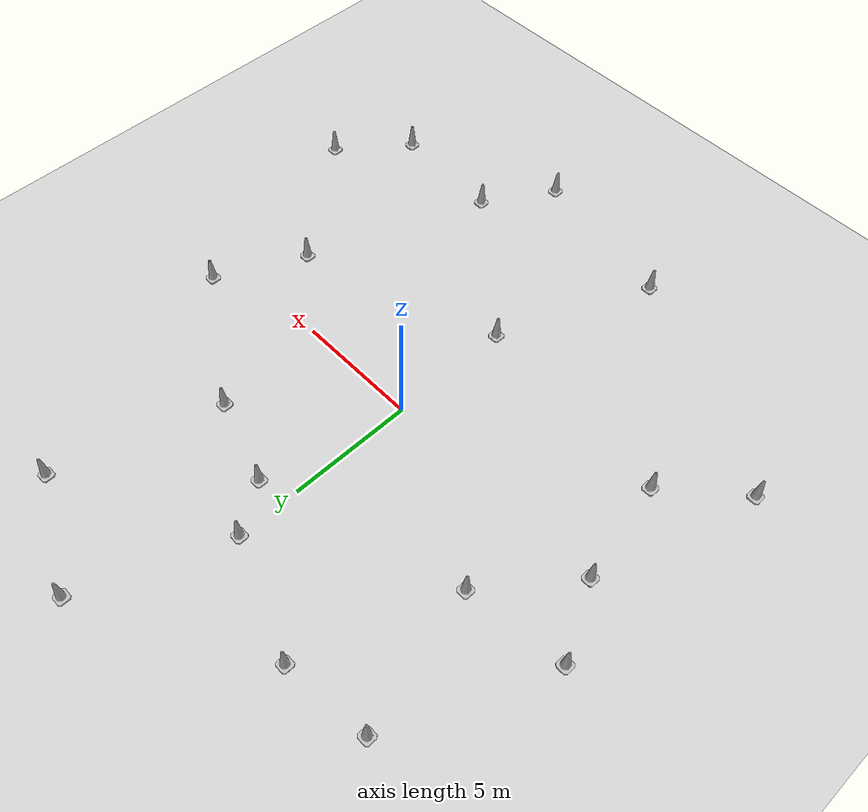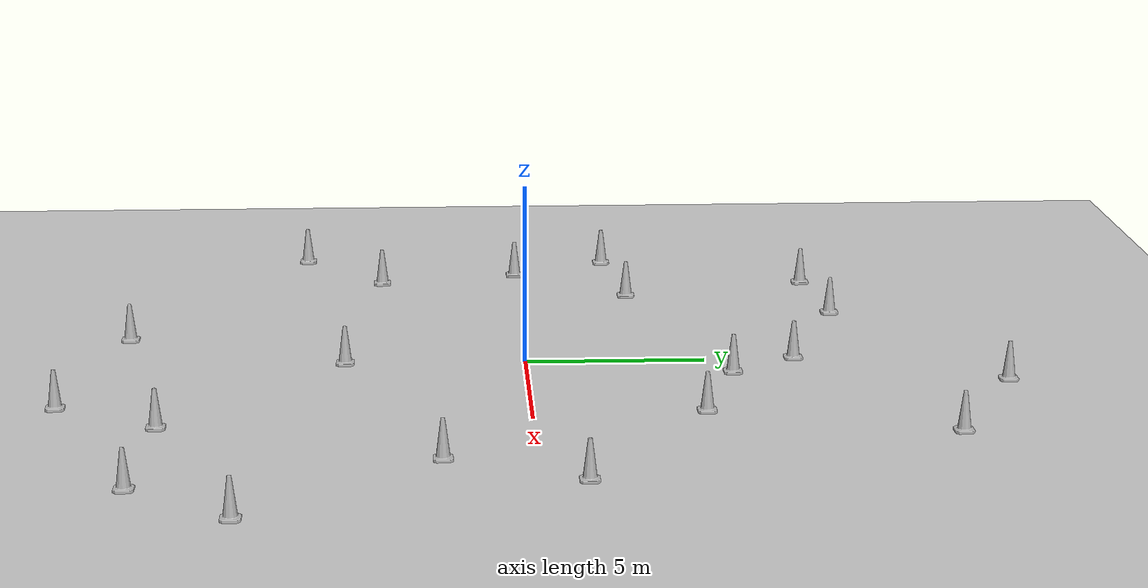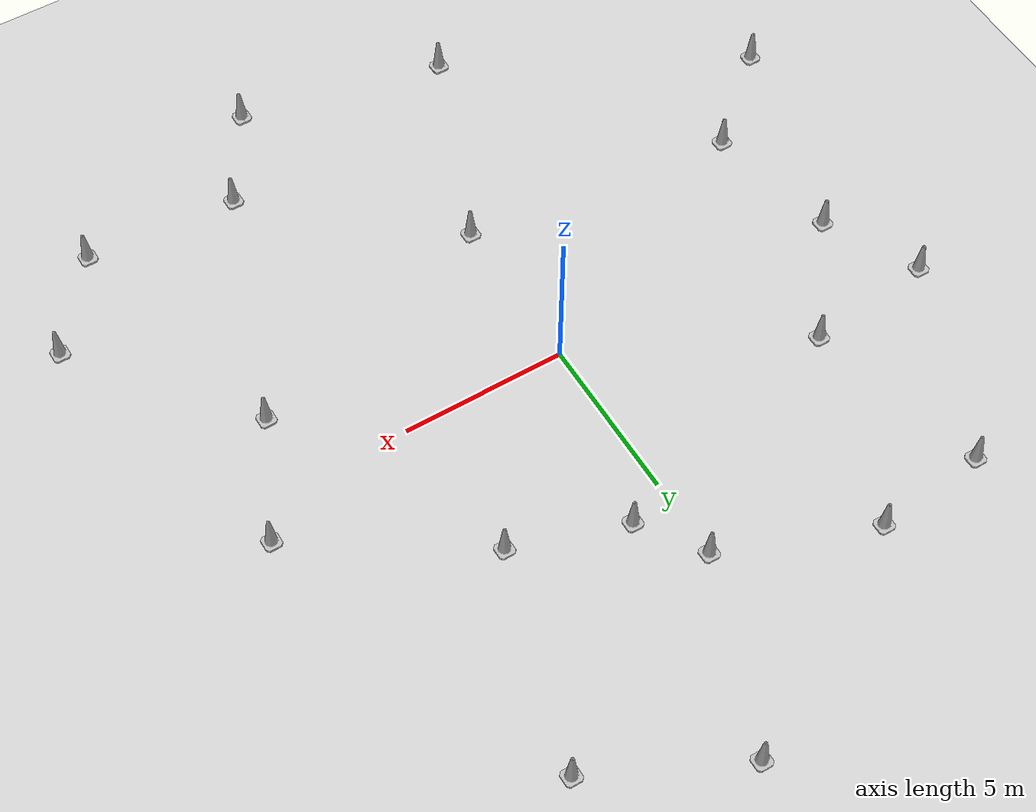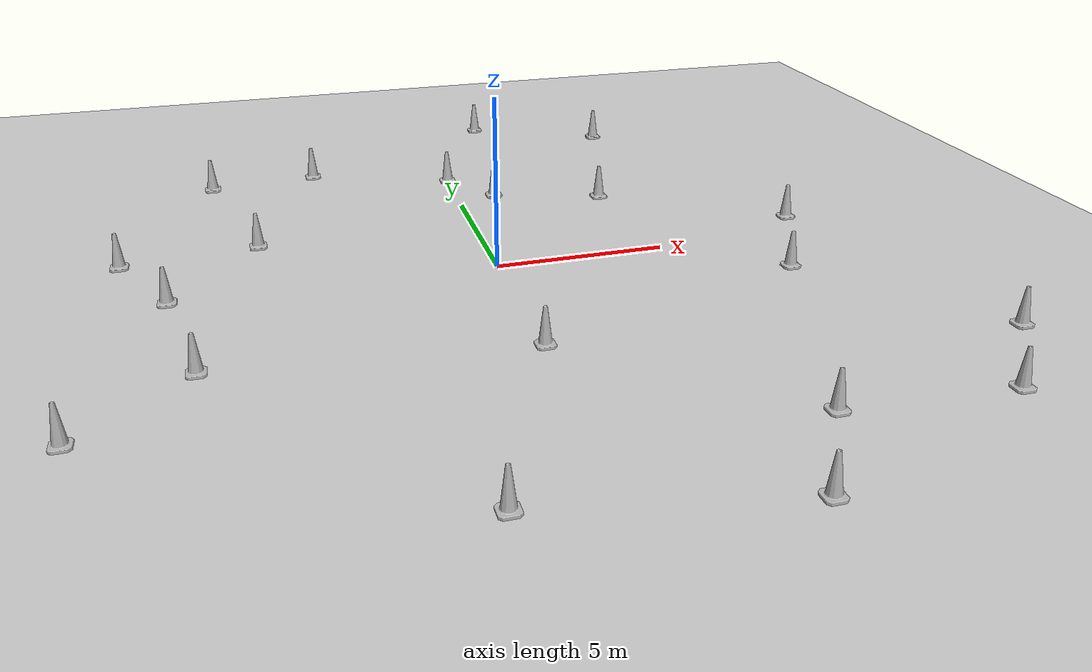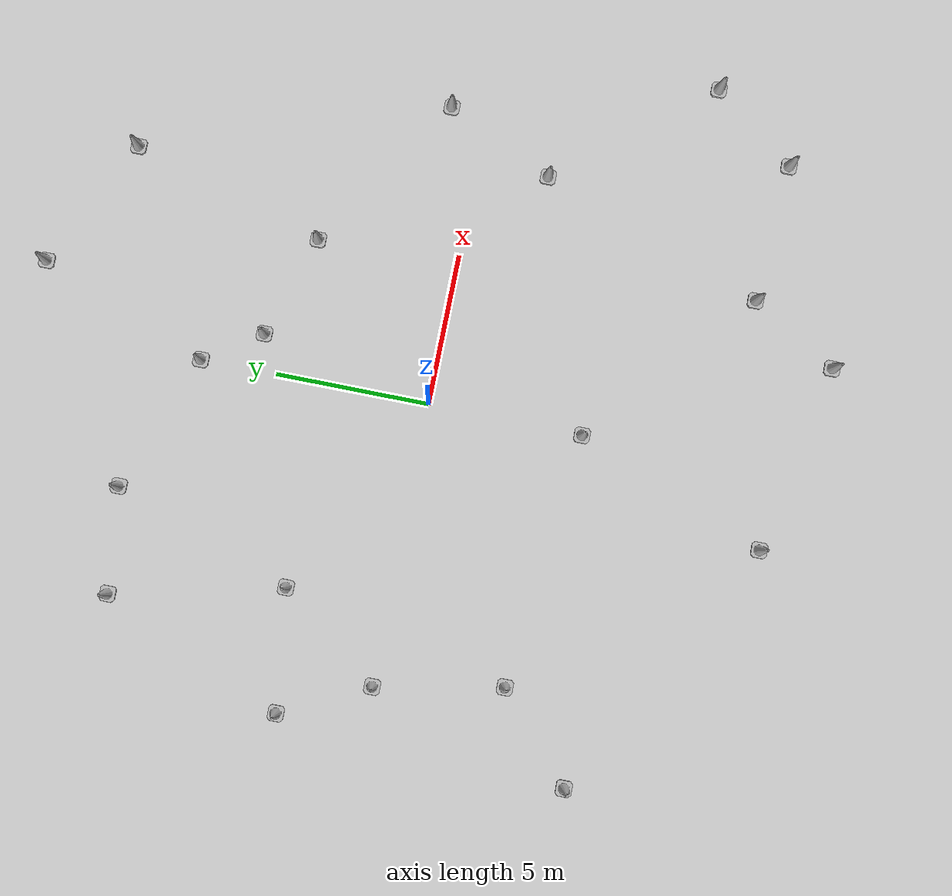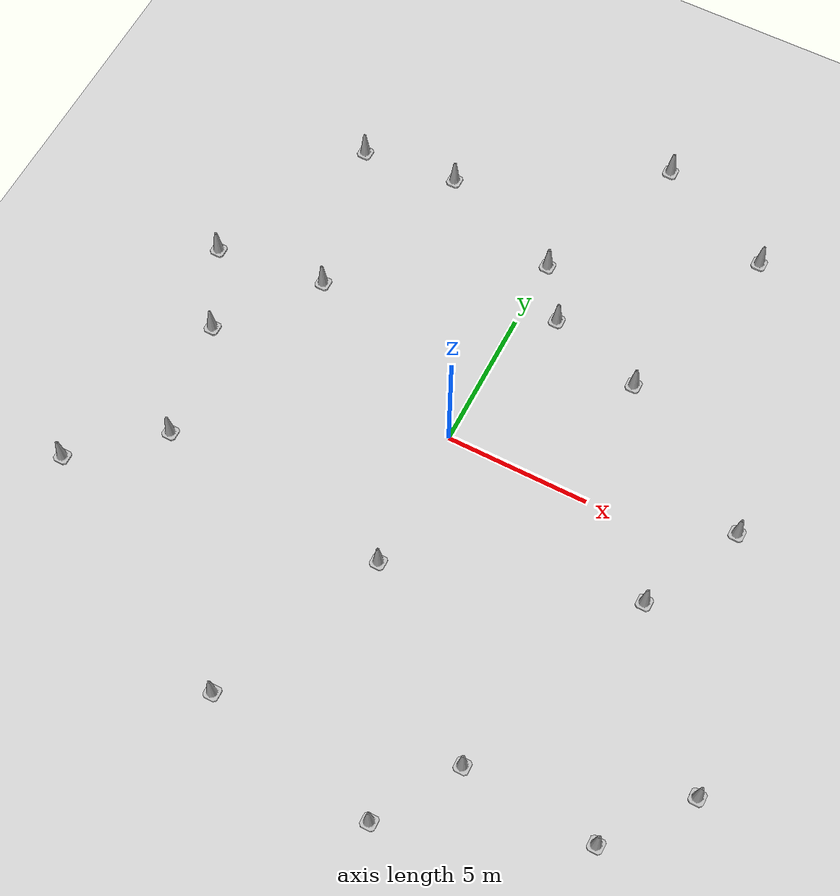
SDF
<?xml version="1.0" ?>
<sdf version="1.10">
    <world name="slam_world">
        <physics name="1ms" type="ignored">
            <max_step_size>0.001</max_step_size>
            <real_time_factor>1.0</real_time_factor>
        </physics>
        <plugin
            filename="gz-sim-physics-system"
            name="gz::sim::systems::Physics">
        </plugin>
        <plugin
            filename="gz-sim-sensors-system"
            name="gz::sim::systems::Sensors">
            <render_engine>ogre2</render_engine>
        </plugin>
        <plugin
            filename="gz-sim-user-commands-system"
            name="gz::sim::systems::UserCommands">
        </plugin>
        <plugin
            filename="gz-sim-scene-broadcaster-system"
            name="gz::sim::systems::SceneBroadcaster">
        </plugin>

        <light type="directional" name="sun">
            <cast_shadows>true</cast_shadows>
            <pose>0 0 10 0 0 0</pose>
            <diffuse>0.8 0.8 0.8 1</diffuse>
            <specular>0.2 0.2 0.2 1</specular>
            <attenuation>
                <range>1000</range>
                <constant>0.9</constant>
                <linear>0.01</linear>
                <quadratic>0.001</quadratic>
            </attenuation>
            <direction>-0.5 0.1 -0.9</direction>
        </light>

        <model name="ground_plane">
            <static>true</static>
            <link name="link">
                <collision name="collision">
                <geometry>
                    <plane>
                    <normal>0 0 1</normal>
                    </plane>
                </geometry>
                </collision>
                <visual name="visual">
                <geometry>
                    <plane>
                    <normal>0 0 1</normal>
                    <size>100 100</size>
                    </plane>
                </geometry>
                <material>
                    <ambient>0.8 0.8 0.8 1</ambient>
                    <diffuse>0.8 0.8 0.8 1</diffuse>
                    <specular>0.8 0.8 0.8 1</specular>
                </material>
                </visual>
            </link>
        </model>

        <!-- 20 plots aléatoires -->
        <model name="cone_1">
        <pose>1.23 5.67 0 0 0 0</pose>
        <include>
            <uri>model://construction_cone</uri>
        </include>
        </model>

        <model name="cone_2">
        <pose>8.12 -2.34 0 0 0 0</pose>
        <include>
            <uri>model://construction_cone</uri>
        </include>
        </model>

        <model name="cone_3">
        <pose>-4.5 9.2 0 0 0 0</pose>
        <include>
            <uri>model://construction_cone</uri>
        </include>
        </model>

        <model name="cone_4">
        <pose>12.1 -7.3 0 0 0 0</pose>
        <include>
            <uri>model://construction_cone</uri>
        </include>
        </model>

        <model name="cone_5">
        <pose>-10.5 2.8 0 0 0 0</pose>
        <include>
            <uri>model://construction_cone</uri>
        </include>
        </model>

        <model name="cone_6">
        <pose>6.5 11.0 0 0 0 0</pose>
        <include>
            <uri>model://construction_cone</uri>
        </include>
        </model>

        <model name="cone_7">
        <pose>-8.3 -4.1 0 0 0 0</pose>
        <include>
            <uri>model://construction_cone</uri>
        </include>
        </model>

        <model name="cone_8">
        <pose>3.7 -12.5 0 0 0 0</pose>
        <include>
            <uri>model://construction_cone</uri>
        </include>
        </model>

        <model name="cone_9">
        <pose>0.0 7.5 0 0 0 0</pose>
        <include>
            <uri>model://construction_cone</uri>
        </include>
        </model>

        <model name="cone_10">
        <pose>-6.6 3.3 0 0 0 0</pose>
        <include>
            <uri>model://construction_cone</uri>
        </include>
        </model>

        <model name="cone_11">
        <pose>9.8 1.2 0 0 0 0</pose>
        <include>
            <uri>model://construction_cone</uri>
        </include>
        </model>

        <model name="cone_12">
        <pose>-11.0 -6.5 0 0 0 0</pose>
        <include>
            <uri>model://construction_cone</uri>
        </include>
        </model>

        <model name="cone_13">
        <pose>5.4 -9.7 0 0 0 0</pose>
        <include>
            <uri>model://construction_cone</uri>
        </include>
        </model>

        <model name="cone_14">
        <pose>2.2 13.1 0 0 0 0</pose>
        <include>
            <uri>model://construction_cone</uri>
        </include>
        </model>

        <model name="cone_15">
        <pose>-7.9 8.8 0 0 0 0</pose>
        <include>
            <uri>model://construction_cone</uri>
        </include>
        </model>

        <model name="cone_16">
        <pose>10.0 -10.0 0 0 0 0</pose>
        <include>
            <uri>model://construction_cone</uri>
        </include>
        </model>

        <model name="cone_17">
        <pose>-2.5 -11.2 0 0 0 0</pose>
        <include>
            <uri>model://construction_cone</uri>
        </include>
        </model>

        <model name="cone_18">
        <pose>4.6 4.6 0 0 0 0</pose>
        <include>
            <uri>model://construction_cone</uri>
        </include>
        </model>

        <model name="cone_19">
        <pose>-9.1 0.0 0 0 0 0</pose>
        <include>
            <uri>model://construction_cone</uri>
        </include>
        </model>

        <model name="cone_20">
        <pose>0.0 -5.0 0 0 0 0</pose>
        <include>
            <uri>model://construction_cone</uri>
        </include>
        </model>
    </world>
</sdf>

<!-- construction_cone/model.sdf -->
<sdf version="1.5">
  <model name="Construction Cone">
    <link name="link">
      <collision name="collision">
        <geometry>
          <mesh>
            <scale>10 10 10</scale>
            <uri>file://isr-testbed/construction_cone/meshes/construction_cone.dae</uri>
          </mesh>
        </geometry>
      </collision>
      <visual name="visual">
        <geometry>
          <mesh>
            <scale>10 10 10</scale>
            <uri>file://isr-testbed/construction_cone/meshes/construction_cone.dae</uri>
          </mesh>
        </geometry>
      </visual>
    </link>
  </model>
</sdf>
